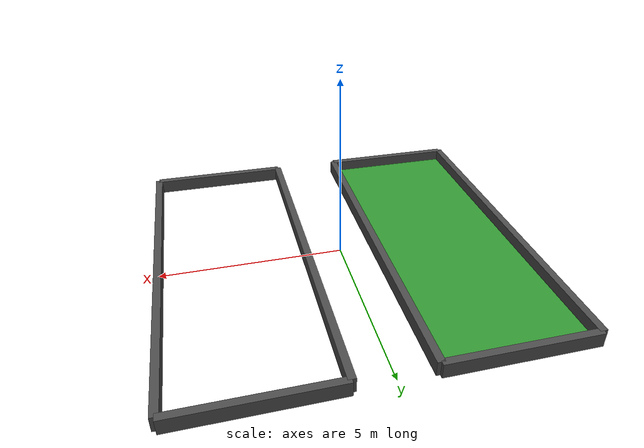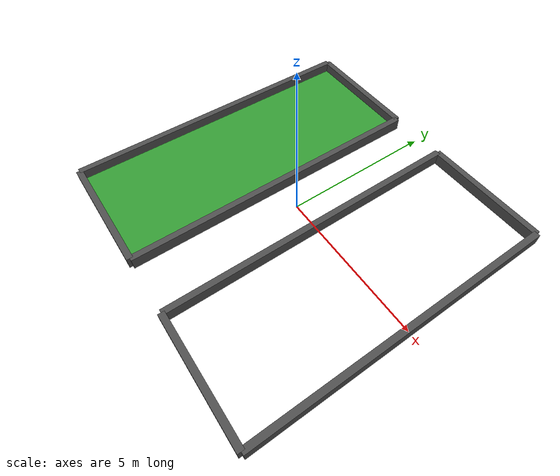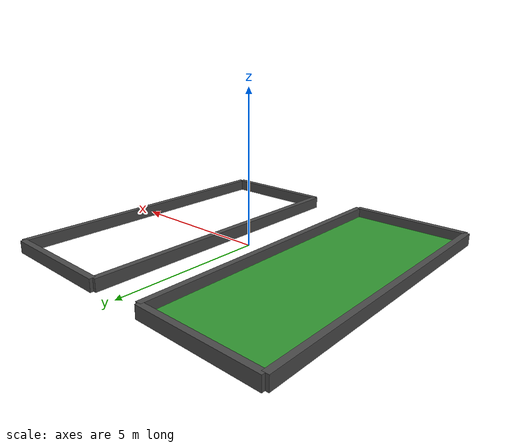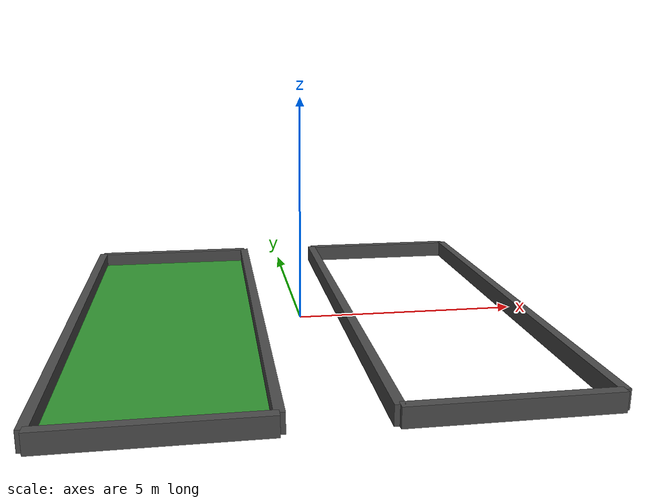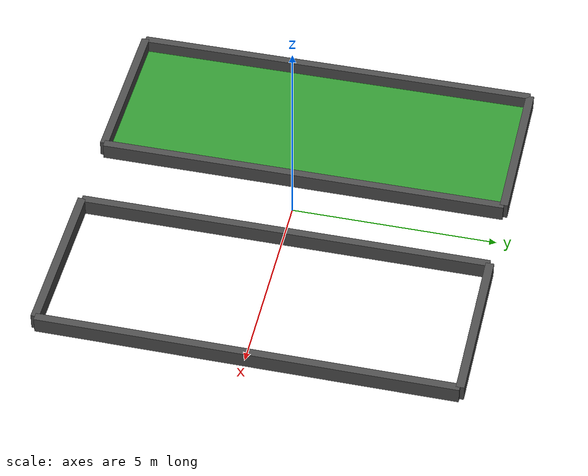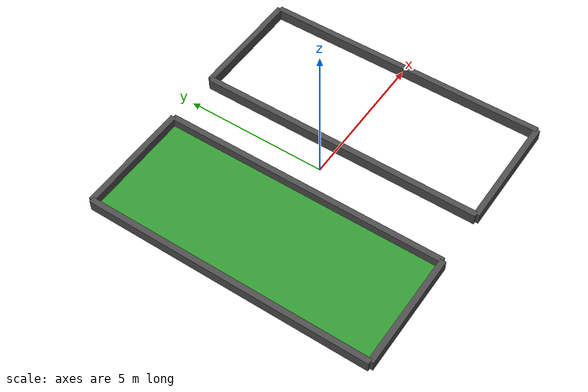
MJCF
<mujoco model="multi_robot_env">
    <compiler angle="radian" />
    <option timestep="0.002" />

    <asset>
        <texture name="checker" type="2d" builtin="checker" width="512" height="512" />
        <material name="gray" texture="checker" rgba="0.7 0.7 0.7 1" />
    </asset>

    <worldbody>
        <light name="main_light" pos="0 0 2" dir="0 0 -1" diffuse="1 1 1"/>

        <!-- 机器人区域 1 -->
        <geom name="ground_1" type="plane" size="2 5 0.1" pos="-3 0 0" rgba="0.2 0.6 0.2 1"/>
        <geom name="wall_left_1" type="box" pos="-5 0 0.1" size="0.1 5 0.2" rgba="0.3 0.3 0.3 1"/>
        <geom name="wall_right_1" type="box" pos="-1 0 0.1" size="0.1 5 0.2" rgba="0.3 0.3 0.3 1"/>
        <geom name="wall_front_1" type="box" pos="-3 -5 0.1" size="2 0.1 0.2" rgba="0.3 0.3 0.3 1"/>
        <geom name="wall_back_1" type="box" pos="-3 5 0.1" size="2 0.1 0.2" rgba="0.3 0.3 0.3 1"/>

        <!-- 机器人区域 2 -->
        <geom name="ground_2" type="plane" size="2 5 0.1" pos="3 0 0" rgba="0.2 0.6 0.2 1"/>
        <geom name="wall_left_2" type="box" pos="1 0 0.1" size="0.1 5 0.2" rgba="0.3 0.3 0.3 1"/>
        <geom name="wall_right_2" type="box" pos="5 0 0.1" size="0.1 5 0.2" rgba="0.3 0.3 0.3 1"/>
        <geom name="wall_front_2" type="box" pos="3 -5 0.1" size="2 0.1 0.2" rgba="0.3 0.3 0.3 1"/>
        <geom name="wall_back_2" type="box" pos="3 5 0.1" size="2 0.1 0.2" rgba="0.3 0.3 0.3 1"/>

        <!-- 未来可扩展区域 -->
        <!-- 这里可以继续添加更多区域 -->

    </worldbody>
</mujoco>
